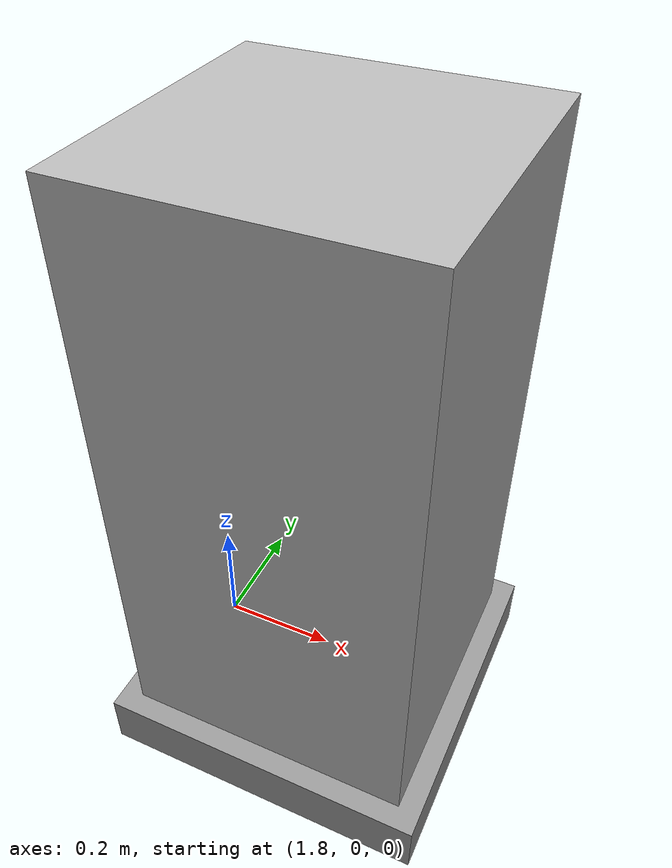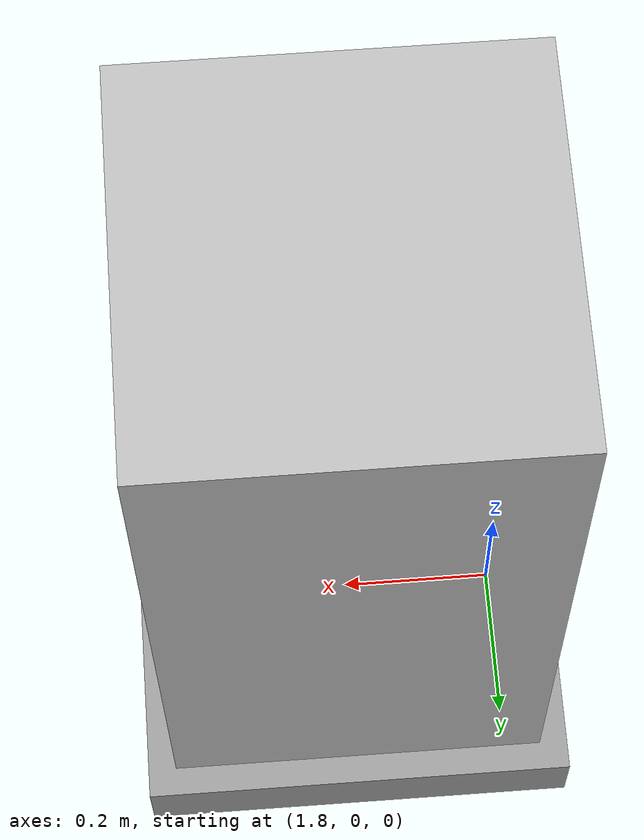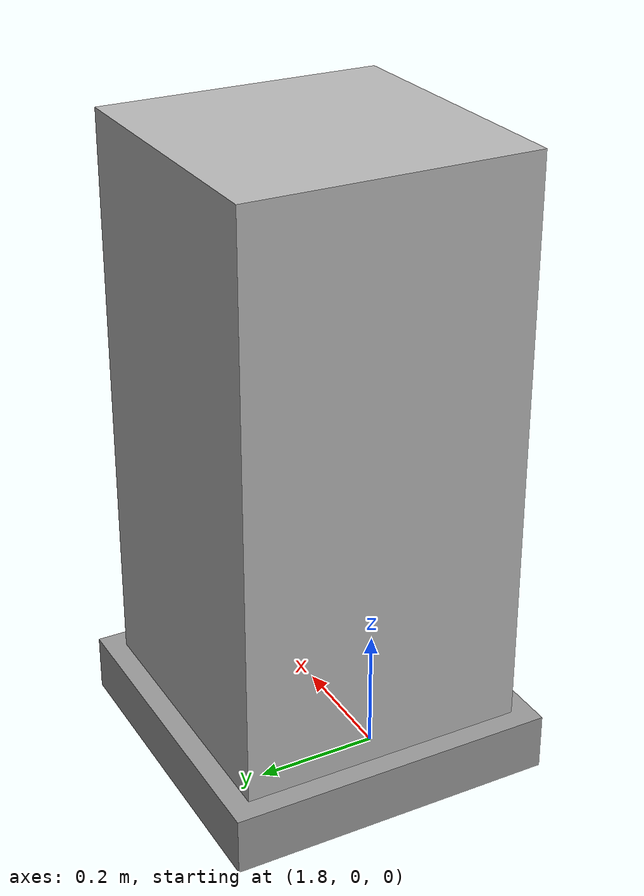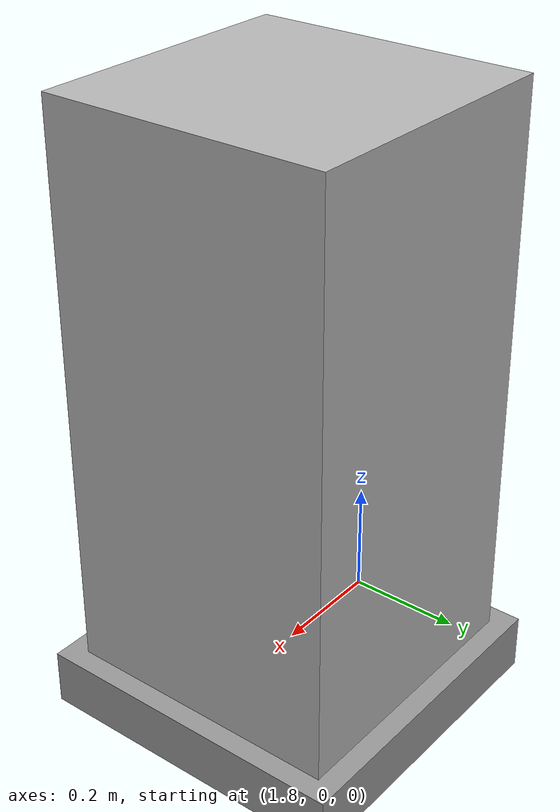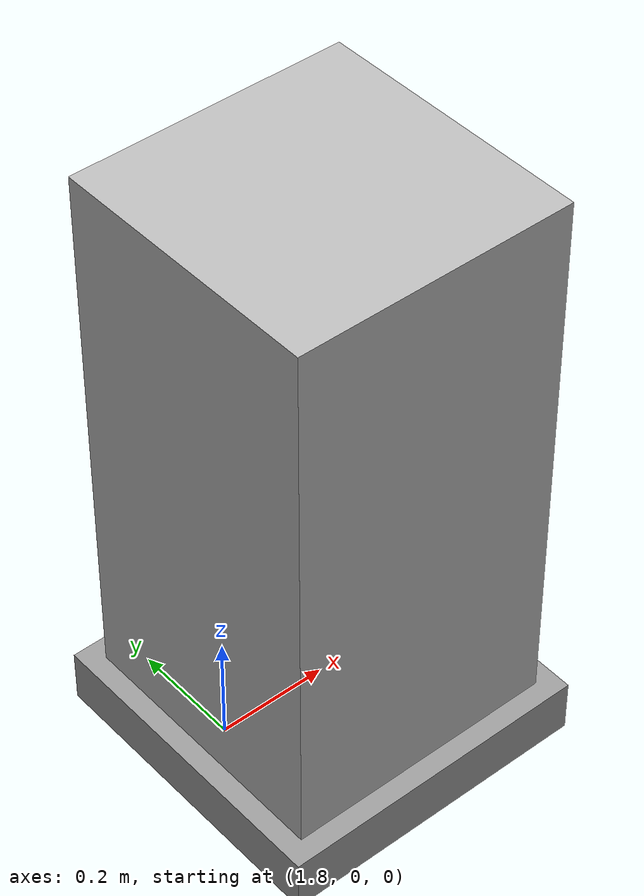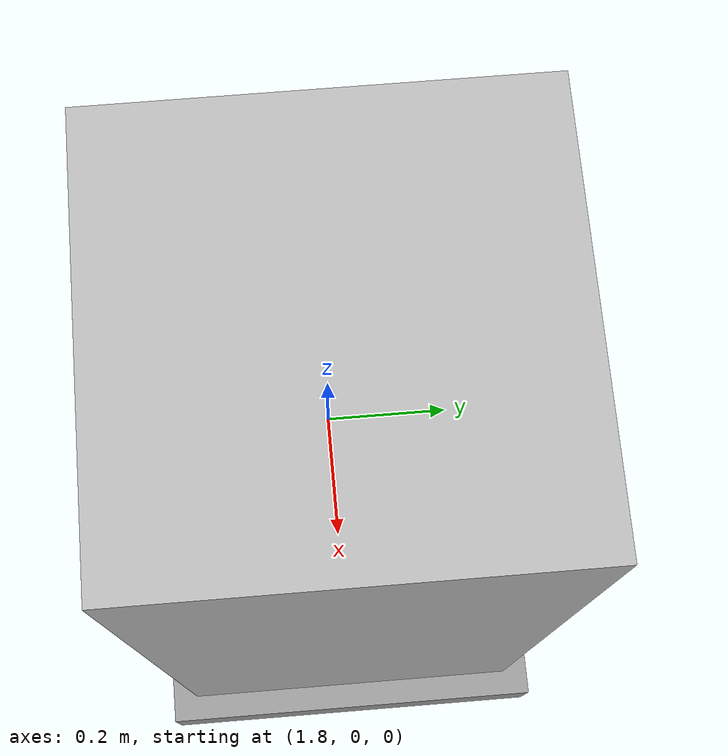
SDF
<?xml version="1.0" ?>

<sdf version="1.9">

    <world name="factory_test">

        <physics name="physics" type="ode">
            <max_step_size>0.001</max_step_size>
            <real_time_factor>1.0</real_time_factor>
        </physics>

        <plugin
            filename="gz-sim-sensors-system"
            name="gz::sim::systems::Sensors">
            <render_engine>ogre2</render_engine>
        </plugin>

        <plugin
            filename="gz-sim-imu-system"
            name="gz::sim::systems::Imu"/>

        <plugin
            filename="gz-sim-physics-system"
            name="gz::sim::systems::Physics"/>

        <plugin
            filename="gz-sim-user-commands-system"
            name="gz::sim::systems::UserCommands"/>

        <plugin
            filename="gz-sim-scene-broadcaster-system"
            name="gz::sim::systems::SceneBroadcaster"/>

        <!-- Sun -->

        <light type="directional" name="sun">

            <cast_shadows>true</cast_shadows>

            <pose>0 0 10 0 0 0</pose>

            <diffuse>0.8 0.8 0.8 1</diffuse>
            <specular>0.2 0.2 0.2 1</specular>

            <direction>-0.5 0.1 -0.9</direction>

        </light>

        <!-- Factory floor -->

        <model name="factory_floor">

            <static>true</static>

            <link name="floor_link">

                <collision name="collision">

                    <geometry>
                        <box>
                            <size>10 10 0.10</size>
                        </box>
                    </geometry>

                </collision>

                <visual name="visual">

                    <geometry>
                        <box>
                            <size>10 10 0.10</size>
                        </box>
                    </geometry>

                    <material>
                        <ambient>0.6 0.6 0.6 1</ambient>
                        <diffuse>0.6 0.6 0.6 1</diffuse>
                    </material>

                </visual>

                <pose>0 0 -0.05 0 0 0</pose>

            </link>

        </model>

        <!-- Test obstacle -->

        <model name="test_box">

            <static>true</static>

            <pose>2 0 0.5 0 0 0</pose>

            <link name="box_link">

                <collision name="collision">
                    <geometry>
                        <box>
                            <size>0.5 0.5 1.0</size>
                        </box>
                    </geometry>
                </collision>

                <visual name="visual">
                    <geometry>
                        <box>
                            <size>0.5 0.5 1.0</size>
                        </box>
                    </geometry>
                </visual>

            </link>

        </model>

    </world>

</sdf>
